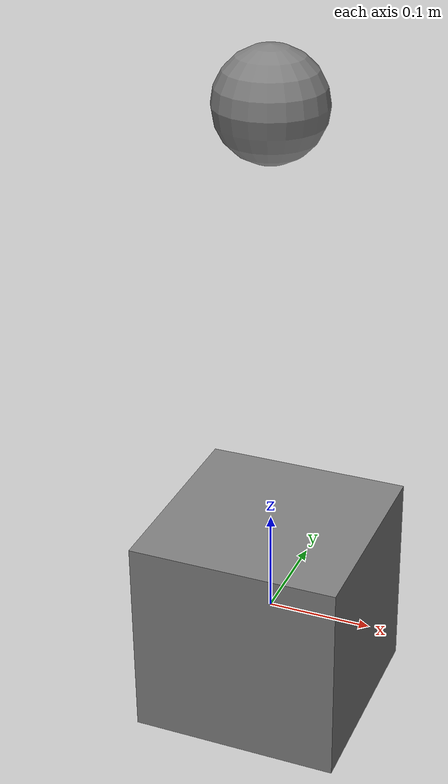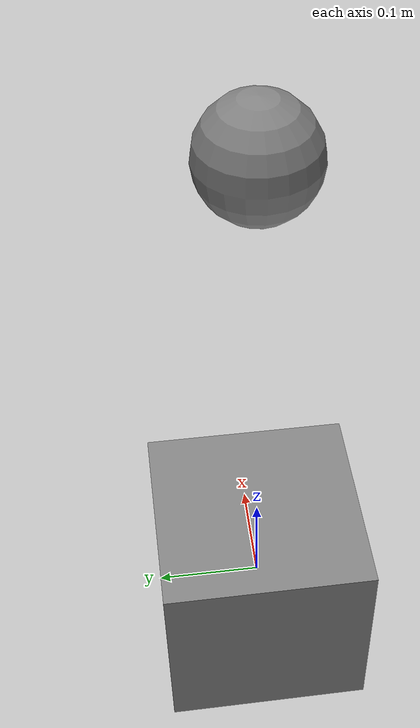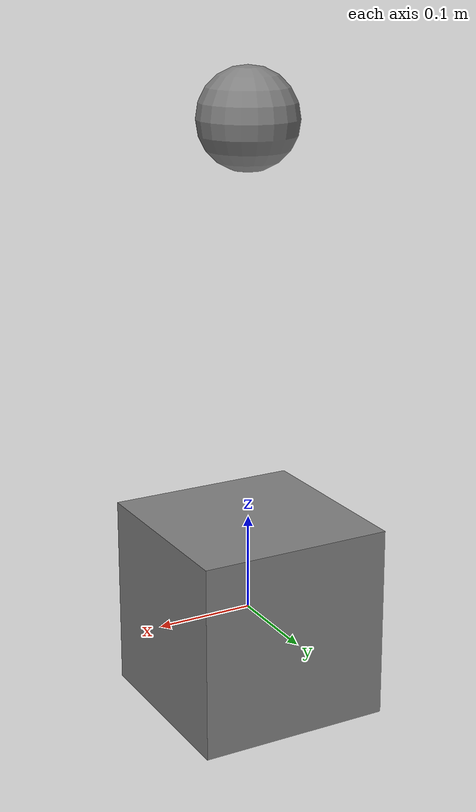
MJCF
<mujoco model="mass_bake_child">
    <worldbody>
        <!-- mass comes from a non-colliding geom, which USD cannot accumulate: the body is baked -->
        <body name="visual_mass">
            <geom type="box" size="0.1 0.1 0.1" contype="0" conaffinity="0" mass="5.0"/>
            <geom type="box" size="0.1 0.1 0.1" contype="1" conaffinity="1" mass="1.0"/>
            <body name="nested" pos="0 0 0.5">
                <geom type="sphere" size="0.05" mass="0.25"/>
            </body>
        </body>
    </worldbody>
</mujoco>
